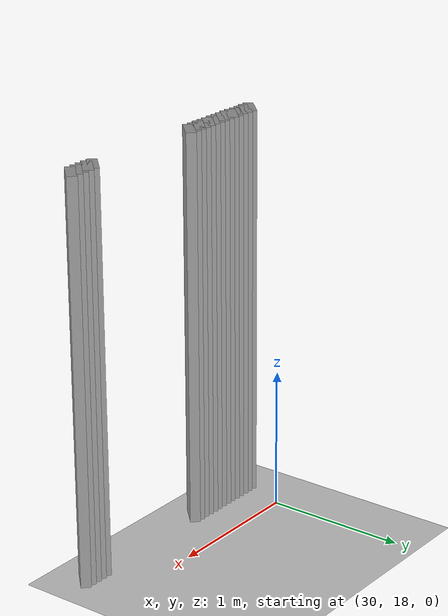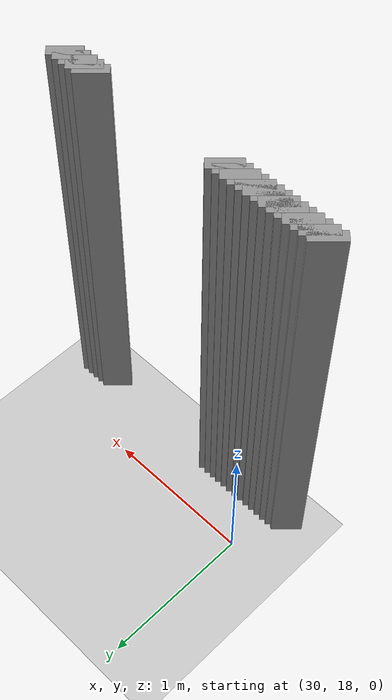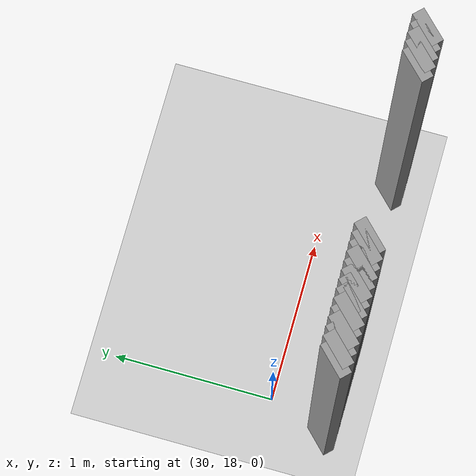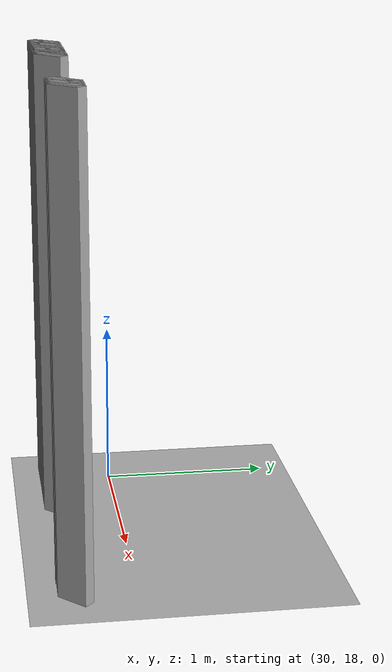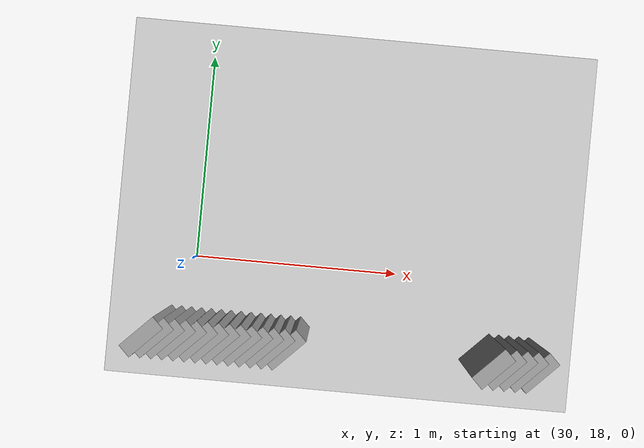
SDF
<sdf version="1.5">
 <world name="default">
  <include><uri>model://ground_plane</uri></include>
  <include><uri>model://sun</uri></include>
  <model name="grey_wall_771">
   <static>1</static>
   <link name="link">
    <pose>29.85 17.65  1.4 0 0 -0.785398163397</pose>
    <collision name="collision"><geometry><box><size>0.0707106781187 .2  2.8</size></box></geometry></collision>
    <visual name="visual">
     <cast_shadows>0</cast_shadows>
     <geometry><box><size>0.0707106781187 .2  2.8</size></box></geometry>
     <material>
      <script>
       <uri>model://grey_wall/materials/scripts</uri>
       <uri>model://grey_wall/materials/textures</uri>
       <name>vrc/grey_wall</name>
      </script>
     </material>
    </visual>
   </link>
  </model>
  <model name="grey_wall_772">
   <static>1</static>
   <link name="link">
    <pose>29.9 17.65  1.4 0 0 -0.785398163397</pose>
    <collision name="collision"><geometry><box><size>0.0707106781187 .2  2.8</size></box></geometry></collision>
    <visual name="visual">
     <cast_shadows>0</cast_shadows>
     <geometry><box><size>0.0707106781187 .2  2.8</size></box></geometry>
     <material>
      <script>
       <uri>model://grey_wall/materials/scripts</uri>
       <uri>model://grey_wall/materials/textures</uri>
       <name>vrc/grey_wall</name>
      </script>
     </material>
    </visual>
   </link>
  </model>
  <model name="grey_wall_773">
   <static>1</static>
   <link name="link">
    <pose>29.95 17.65  1.4 0 0 -0.785398163397</pose>
    <collision name="collision"><geometry><box><size>0.0707106781187 .2  2.8</size></box></geometry></collision>
    <visual name="visual">
     <cast_shadows>0</cast_shadows>
     <geometry><box><size>0.0707106781187 .2  2.8</size></box></geometry>
     <material>
      <script>
       <uri>model://grey_wall/materials/scripts</uri>
       <uri>model://grey_wall/materials/textures</uri>
       <name>vrc/grey_wall</name>
      </script>
     </material>
    </visual>
   </link>
  </model>
  <model name="grey_wall_774">
   <static>1</static>
   <link name="link">
    <pose>30.0 17.65  1.4 0 0 -0.785398163397</pose>
    <collision name="collision"><geometry><box><size>0.0707106781187 .2  2.8</size></box></geometry></collision>
    <visual name="visual">
     <cast_shadows>0</cast_shadows>
     <geometry><box><size>0.0707106781187 .2  2.8</size></box></geometry>
     <material>
      <script>
       <uri>model://grey_wall/materials/scripts</uri>
       <uri>model://grey_wall/materials/textures</uri>
       <name>vrc/grey_wall</name>
      </script>
     </material>
    </visual>
   </link>
  </model>
  <model name="grey_wall_775">
   <static>1</static>
   <link name="link">
    <pose>30.05 17.65  1.4 0 0 -0.785398163397</pose>
    <collision name="collision"><geometry><box><size>0.0707106781187 .2  2.8</size></box></geometry></collision>
    <visual name="visual">
     <cast_shadows>0</cast_shadows>
     <geometry><box><size>0.0707106781187 .2  2.8</size></box></geometry>
     <material>
      <script>
       <uri>model://grey_wall/materials/scripts</uri>
       <uri>model://grey_wall/materials/textures</uri>
       <name>vrc/grey_wall</name>
      </script>
     </material>
    </visual>
   </link>
  </model>
  <model name="grey_wall_776">
   <static>1</static>
   <link name="link">
    <pose>30.1 17.65  1.4 0 0 -0.785398163397</pose>
    <collision name="collision"><geometry><box><size>0.0707106781187 .2  2.8</size></box></geometry></collision>
    <visual name="visual">
     <cast_shadows>0</cast_shadows>
     <geometry><box><size>0.0707106781187 .2  2.8</size></box></geometry>
     <material>
      <script>
       <uri>model://grey_wall/materials/scripts</uri>
       <uri>model://grey_wall/materials/textures</uri>
       <name>vrc/grey_wall</name>
      </script>
     </material>
    </visual>
   </link>
  </model>
  <model name="grey_wall_777">
   <static>1</static>
   <link name="link">
    <pose>30.15 17.65  1.4 0 0 -0.785398163397</pose>
    <collision name="collision"><geometry><box><size>0.0707106781187 .2  2.8</size></box></geometry></collision>
    <visual name="visual">
     <cast_shadows>0</cast_shadows>
     <geometry><box><size>0.0707106781187 .2  2.8</size></box></geometry>
     <material>
      <script>
       <uri>model://grey_wall/materials/scripts</uri>
       <uri>model://grey_wall/materials/textures</uri>
       <name>vrc/grey_wall</name>
      </script>
     </material>
    </visual>
   </link>
  </model>
  <model name="grey_wall_778">
   <static>1</static>
   <link name="link">
    <pose>30.2 17.65  1.4 0 0 -0.785398163397</pose>
    <collision name="collision"><geometry><box><size>0.0707106781187 .2  2.8</size></box></geometry></collision>
    <visual name="visual">
     <cast_shadows>0</cast_shadows>
     <geometry><box><size>0.0707106781187 .2  2.8</size></box></geometry>
     <material>
      <script>
       <uri>model://grey_wall/materials/scripts</uri>
       <uri>model://grey_wall/materials/textures</uri>
       <name>vrc/grey_wall</name>
      </script>
     </material>
    </visual>
   </link>
  </model>
  <model name="grey_wall_779">
   <static>1</static>
   <link name="link">
    <pose>30.25 17.65  1.4 0 0 -0.785398163397</pose>
    <collision name="collision"><geometry><box><size>0.0707106781187 .2  2.8</size></box></geometry></collision>
    <visual name="visual">
     <cast_shadows>0</cast_shadows>
     <geometry><box><size>0.0707106781187 .2  2.8</size></box></geometry>
     <material>
      <script>
       <uri>model://grey_wall/materials/scripts</uri>
       <uri>model://grey_wall/materials/textures</uri>
       <name>vrc/grey_wall</name>
      </script>
     </material>
    </visual>
   </link>
  </model>
  <model name="grey_wall_780">
   <static>1</static>
   <link name="link">
    <pose>30.3 17.65  1.4 0 0 -0.785398163397</pose>
    <collision name="collision"><geometry><box><size>0.0707106781187 .2  2.8</size></box></geometry></collision>
    <visual name="visual">
     <cast_shadows>0</cast_shadows>
     <geometry><box><size>0.0707106781187 .2  2.8</size></box></geometry>
     <material>
      <script>
       <uri>model://grey_wall/materials/scripts</uri>
       <uri>model://grey_wall/materials/textures</uri>
       <name>vrc/grey_wall</name>
      </script>
     </material>
    </visual>
   </link>
  </model>
  <model name="grey_wall_781">
   <static>1</static>
   <link name="link">
    <pose>30.35 17.65  1.4 0 0 -0.785398163397</pose>
    <collision name="collision"><geometry><box><size>0.0707106781187 .2  2.8</size></box></geometry></collision>
    <visual name="visual">
     <cast_shadows>0</cast_shadows>
     <geometry><box><size>0.0707106781187 .2  2.8</size></box></geometry>
     <material>
      <script>
       <uri>model://grey_wall/materials/scripts</uri>
       <uri>model://grey_wall/materials/textures</uri>
       <name>vrc/grey_wall</name>
      </script>
     </material>
    </visual>
   </link>
  </model>
  <model name="grey_wall_782">
   <static>1</static>
   <link name="link">
    <pose>30.4 17.65  1.4 0 0 -0.785398163397</pose>
    <collision name="collision"><geometry><box><size>0.0707106781187 .2  2.8</size></box></geometry></collision>
    <visual name="visual">
     <cast_shadows>0</cast_shadows>
     <geometry><box><size>0.0707106781187 .2  2.8</size></box></geometry>
     <material>
      <script>
       <uri>model://grey_wall/materials/scripts</uri>
       <uri>model://grey_wall/materials/textures</uri>
       <name>vrc/grey_wall</name>
      </script>
     </material>
    </visual>
   </link>
  </model>
  <model name="grey_wall_783">
   <static>1</static>
   <link name="link">
    <pose>30.45 17.65  1.4 0 0 -0.785398163397</pose>
    <collision name="collision"><geometry><box><size>0.0707106781187 .2  2.8</size></box></geometry></collision>
    <visual name="visual">
     <cast_shadows>0</cast_shadows>
     <geometry><box><size>0.0707106781187 .2  2.8</size></box></geometry>
     <material>
      <script>
       <uri>model://grey_wall/materials/scripts</uri>
       <uri>model://grey_wall/materials/textures</uri>
       <name>vrc/grey_wall</name>
      </script>
     </material>
    </visual>
   </link>
  </model>
  <model name="grey_wall_784">
   <static>1</static>
   <link name="link">
    <pose>30.5 17.65  1.4 0 0 -0.785398163397</pose>
    <collision name="collision"><geometry><box><size>0.0707106781187 .2  2.8</size></box></geometry></collision>
    <visual name="visual">
     <cast_shadows>0</cast_shadows>
     <geometry><box><size>0.0707106781187 .2  2.8</size></box></geometry>
     <material>
      <script>
       <uri>model://grey_wall/materials/scripts</uri>
       <uri>model://grey_wall/materials/textures</uri>
       <name>vrc/grey_wall</name>
      </script>
     </material>
    </visual>
   </link>
  </model>
  <model name="grey_wall_785">
   <static>1</static>
   <link name="link">
    <pose>31.45 17.65  1.4 0 0 -0.785398163397</pose>
    <collision name="collision"><geometry><box><size>0.0707106781187 .2  2.8</size></box></geometry></collision>
    <visual name="visual">
     <cast_shadows>0</cast_shadows>
     <geometry><box><size>0.0707106781187 .2  2.8</size></box></geometry>
     <material>
      <script>
       <uri>model://grey_wall/materials/scripts</uri>
       <uri>model://grey_wall/materials/textures</uri>
       <name>vrc/grey_wall</name>
      </script>
     </material>
    </visual>
   </link>
  </model>
  <model name="grey_wall_786">
   <static>1</static>
   <link name="link">
    <pose>31.5 17.65  1.4 0 0 -0.785398163397</pose>
    <collision name="collision"><geometry><box><size>0.0707106781187 .2  2.8</size></box></geometry></collision>
    <visual name="visual">
     <cast_shadows>0</cast_shadows>
     <geometry><box><size>0.0707106781187 .2  2.8</size></box></geometry>
     <material>
      <script>
       <uri>model://grey_wall/materials/scripts</uri>
       <uri>model://grey_wall/materials/textures</uri>
       <name>vrc/grey_wall</name>
      </script>
     </material>
    </visual>
   </link>
  </model>
  <model name="grey_wall_787">
   <static>1</static>
   <link name="link">
    <pose>31.55 17.65  1.4 0 0 -0.785398163397</pose>
    <collision name="collision"><geometry><box><size>0.0707106781187 .2  2.8</size></box></geometry></collision>
    <visual name="visual">
     <cast_shadows>0</cast_shadows>
     <geometry><box><size>0.0707106781187 .2  2.8</size></box></geometry>
     <material>
      <script>
       <uri>model://grey_wall/materials/scripts</uri>
       <uri>model://grey_wall/materials/textures</uri>
       <name>vrc/grey_wall</name>
      </script>
     </material>
    </visual>
   </link>
  </model>
  <model name="grey_wall_788">
   <static>1</static>
   <link name="link">
    <pose>31.6 17.65  1.4 0 0 -0.785398163397</pose>
    <collision name="collision"><geometry><box><size>0.0707106781187 .2  2.8</size></box></geometry></collision>
    <visual name="visual">
     <cast_shadows>0</cast_shadows>
     <geometry><box><size>0.0707106781187 .2  2.8</size></box></geometry>
     <material>
      <script>
       <uri>model://grey_wall/materials/scripts</uri>
       <uri>model://grey_wall/materials/textures</uri>
       <name>vrc/grey_wall</name>
      </script>
     </material>
    </visual>
   </link>
  </model>
  <model name="grey_wall_789">
   <static>1</static>
   <link name="link">
    <pose>31.65 17.65  1.4 0 0 -0.785398163397</pose>
    <collision name="collision"><geometry><box><size>0.0707106781187 .2  2.8</size></box></geometry></collision>
    <visual name="visual">
     <cast_shadows>0</cast_shadows>
     <geometry><box><size>0.0707106781187 .2  2.8</size></box></geometry>
     <material>
      <script>
       <uri>model://grey_wall/materials/scripts</uri>
       <uri>model://grey_wall/materials/textures</uri>
       <name>vrc/grey_wall</name>
      </script>
     </material>
    </visual>
   </link>
  </model>
 </world>
</sdf>
